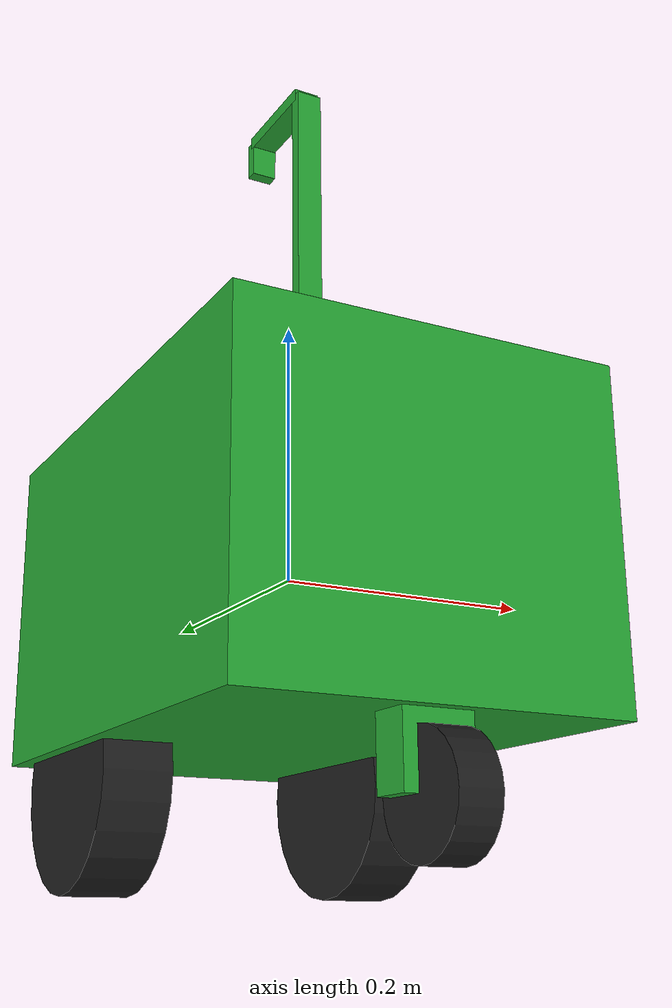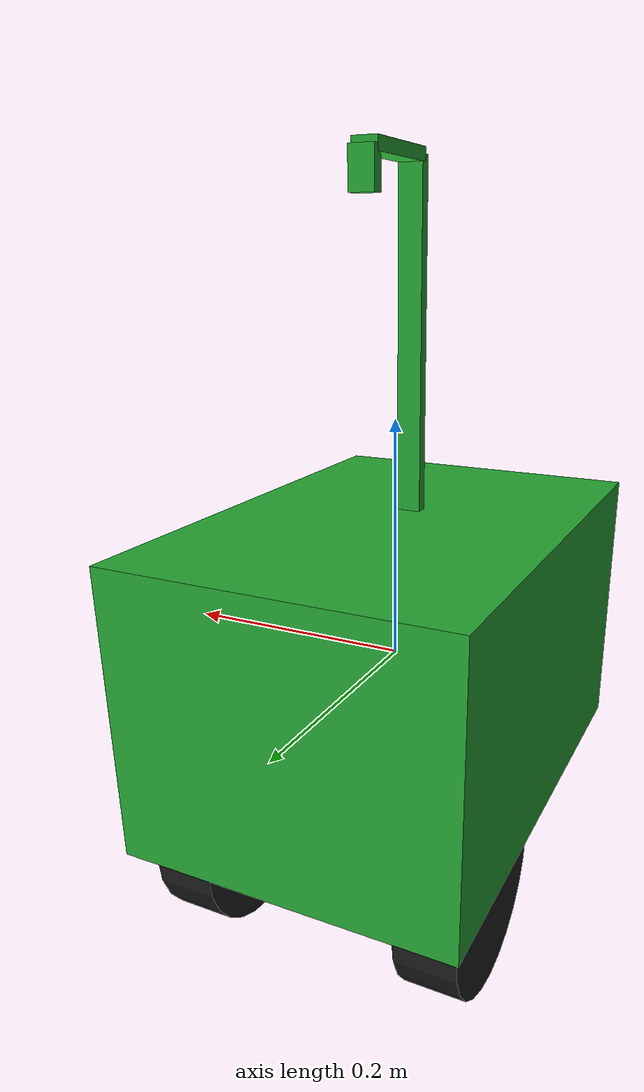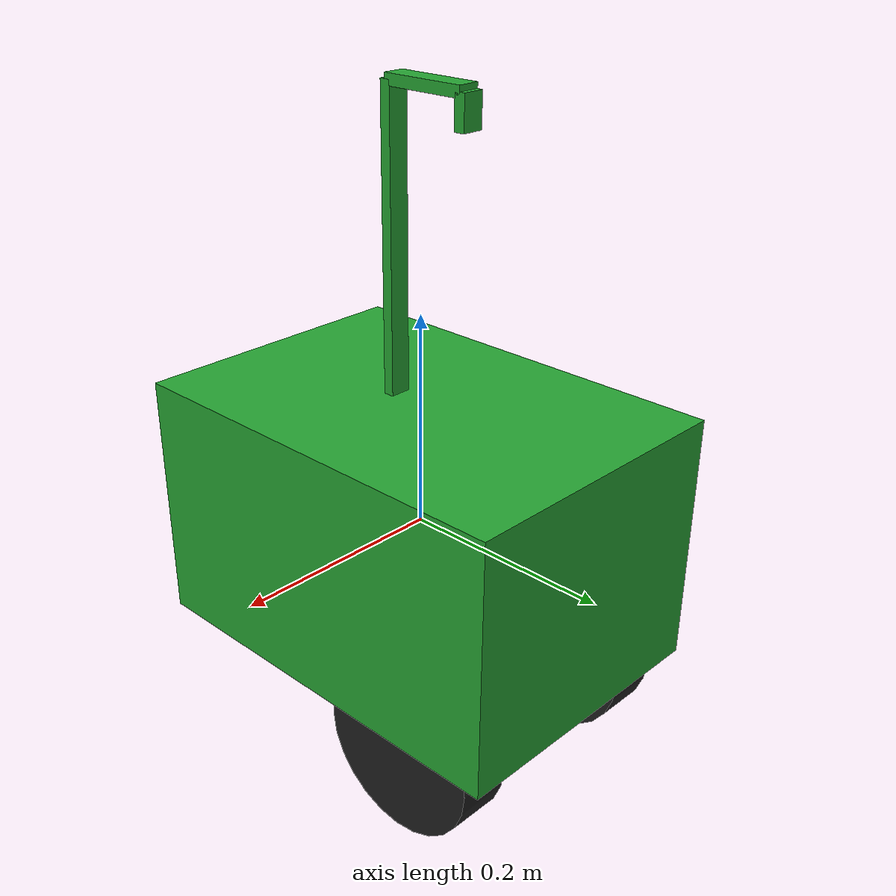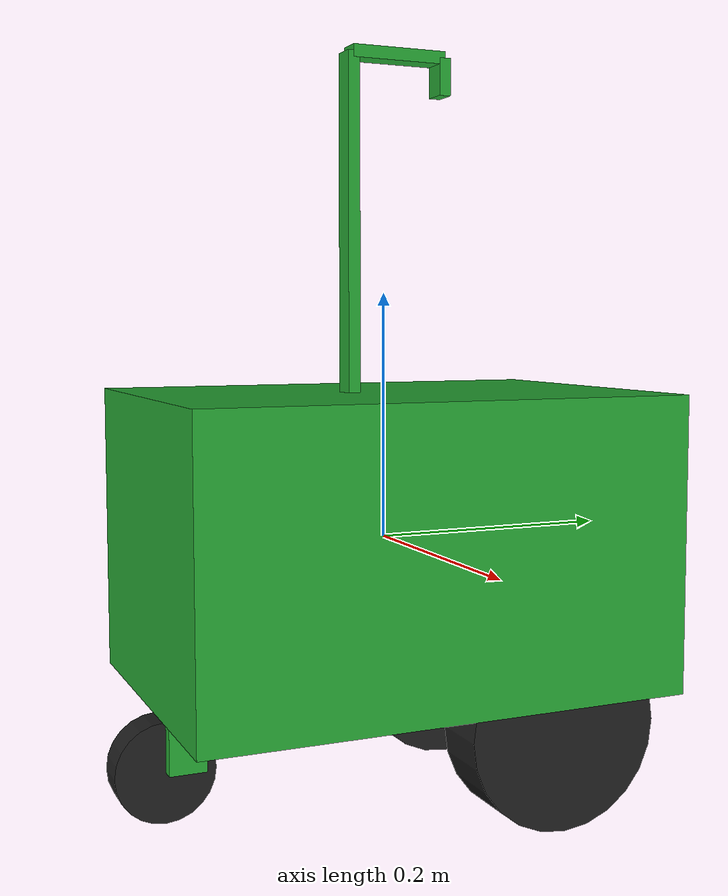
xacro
<?xml version="1.0"?>
<robot xmlns:sensor="http://playerstage.sourceforge.net/gazebo/xmlschema/#sensor"
	xmlns:controller="http://playerstage.sourceforge.net/gazebo/xmlschema/#controller"
	xmlns:interface="http://playerstage.sourceforge.net/gazebo/xmlschema/#interface"
	xmlns:xacro="http://ros.org/wiki/xacro" name="JoeMegaTron">

	<xacro:property name="PI" value="3.14"/>
	<xacro:property name="wheel_separation" value="0.21"/>
	<xacro:property name="wheel_radius" value="0.08"/>
	<xacro:property name="wheel_width" value="0.05"/>
	<xacro:property name="wheel_distance_from_front" value="0.103"/>
	<xacro:property name="wheel_distance_below_body" value="0.02"/>
	<xacro:property name="box_width" value="0.28"/>
	<xacro:property name="box_length" value="0.40"/>
	<xacro:property name="box_height" value="0.24"/>
	<xacro:property name="tower_height" value="0.27"/>
	<xacro:property name="tower_width" value="0.02"/>
	<xacro:property name="tower_length" value="0.01"/>
	<xacro:property name="tower_distance_from_back" value="0.17"/>
	<xacro:property name="boom_forward" value="0.08"/>
	<xacro:property name="boom_down" value="0.03"/>
	<xacro:property name="pivot_distance_from_back" value="0.04"/>
	<xacro:property name="pivot_height" value="0.05"/>
	<xacro:property name="pivot_offset" value="0.03"/>
	<xacro:property name="pivot_wheel_radius" value="0.04"/>
	<xacro:property name="pivot_wheel_width" value="0.03"/>

	<xacro:macro name="wheel" params="name radius width parent *origin">

		<link name="${name}">
			<visual>
				<geometry>
					<cylinder radius="${radius}" length="${width}"/>
				</geometry>
				<origin xyz="0 0 0" rpy="0 ${PI/2} 0"/>
			</visual>
			<inertial>
				<mass value="3.0"/>
				<inertia ixx="1.0" ixy="0.0" ixz="0.0" iyy="1.0" iyz="0.0" izz="1.0"/>
			</inertial>
			<collision>
				<geometry>
					<cylinder radius="${radius}" length="${width}"/>
				</geometry>
				<origin xyz="0 0 0" rpy="0 ${PI/2} 0"/>
			</collision>
		</link>

		<gazebo reference="${name}">
			<material>Gazebo/Black</material>
			<mu1 value="100.0"/>
			<mu2 value="100.0"/>
			<kp value="1000000.0"/>
			<kd value="1.0"/>
		</gazebo>

		<joint name="${name}_axis" type="continuous">
			<limits effort="1000.0" velocity="50.0"/>
			<axis xyz="1 0 0"/>
			<child link="${name}"/>
			<parent link="${parent}"/>
			<xacro:insert_block name="origin"/>
		</joint>

	</xacro:macro>

	<xacro:macro name="BoxBody" params="name width length height *origin">

		<link name="${name}">
			<inertial>
				<mass value="1.0"/>
				<inertia ixx="1.0" ixy="0.0" ixz="0.0" iyy="1.0" iyz="0.0" izz="1.0"/>
				<xacro:insert_block name="origin"/>
			</inertial>
			<visual>
				<geometry>
					<box size="${width} ${length} ${height}"/>
				</geometry>
				<xacro:insert_block name="origin"/>
			</visual>
			<collision>
				<geometry>
					<box size="${width} ${length} ${height}"/>
				</geometry>
				<xacro:insert_block name="origin"/>
			</collision>
		</link>

		<gazebo reference="${name}">
			<material>Gazebo/Green</material>
		</gazebo>

	</xacro:macro>

        <xacro:macro name="BoxBody2" params="name width length height *origin">

		<link name="${name}">
			<inertial>
				<mass value="30.0"/>
				<inertia ixx="30.0" ixy="0.0" ixz="0.0" iyy="30.0" iyz="0.0" izz="30.0"/>
				<xacro:insert_block name="origin"/>
			</inertial>
			<visual>
				<geometry>
					<box size="${width} ${length} ${height}"/>
				</geometry>
				<xacro:insert_block name="origin"/>
			</visual>
			<collision>
				<geometry>
					<box size="${width} ${length} ${height}"/>
				</geometry>
				<xacro:insert_block name="origin"/>
			</collision>
		</link>

		<gazebo reference="${name}">
			<material>Gazebo/Green</material>
		</gazebo>

	</xacro:macro>

	<xacro:BoxBody2 name="Joe_body" width="${box_width}" length="${box_length}" height="${box_height}">

		<origin xyz="0 0 0" rpy="0 0 0"/>

	</xacro:BoxBody2>

	<xacro:wheel name="left_wheel" radius="${wheel_radius}" width="${wheel_width}" parent="Joe_body">

		<origin xyz="${wheel_separation/2} ${box_length/2 - wheel_distance_from_front} ${-wheel_distance_below_body - box_height/2}" rpy="0 0 0"/>

	</xacro:wheel>

	<xacro:wheel name="right_wheel" radius="${wheel_radius}" width="${wheel_width}" parent="Joe_body">

		<origin xyz="${-wheel_separation/2} ${box_length/2 - wheel_distance_from_front} ${-wheel_distance_below_body - box_height/2}" rpy="0 0 0"/>

	</xacro:wheel>

	<xacro:BoxBody name="pivot_box" width="${pivot_wheel_width + 0.02}" length="${pivot_offset}" height="${pivot_height}">

		<origin xyz="0 ${-pivot_offset/2} ${-pivot_height/2}" rpy="0 0 0"/>

	</xacro:BoxBody>

	<joint name="pivot_joint" type="continuous">
		<axis xyz="0 0 1"/>
		<limits effort="1000.0" velocity="3.0"/>
		<parent link="Joe_body"/>
		<child link="pivot_box"/>
		<origin xyz="0 ${-box_length/2 + pivot_distance_from_back} ${-box_height/2}" rpy="0 0 0"/>
	</joint>

	<xacro:wheel name="pivot_wheel" radius="${pivot_wheel_radius}" width="${pivot_wheel_width}" parent="pivot_box">

		<origin xyz="0 ${-pivot_offset} ${-pivot_height}" rpy="0 0 0"/>

	</xacro:wheel>

	<xacro:BoxBody name="tower_base" width="${tower_width}" length="${tower_length}" height="${tower_height}">

		<origin xyz="0 0 ${tower_height/2}" rpy="0 0 0"/>

	</xacro:BoxBody>

	<joint name="tower_base_joint" type="fixed">
		<parent link="Joe_body"/>
		<child link="tower_base"/>
		<origin xyz="0 ${-box_length/2 + tower_distance_from_back} ${box_height/2}" rpy="0 0 0"/>
	</joint>

	<xacro:BoxBody name="tower_boom_1" width="${tower_width}" length="${boom_forward}" height="${tower_length}">

		<origin xyz="0 ${boom_forward/2} 0" rpy="0 0 0"/>

	</xacro:BoxBody>

	<joint name="tower_boom_joint" type="fixed">
		<parent link="tower_base"/>
		<child link="tower_boom_1"/>
		<origin xyz="0 0 ${tower_height}" rpy="0 0 0"/>
	</joint>

	<xacro:BoxBody name="tower_boom_2" width="${tower_width}" length="${tower_length}" height="${boom_down}">

		<origin xyz="0 0 ${-boom_down/2}" rpy="0 0 0"/>

	</xacro:BoxBody>

	<joint name="boom_boom_joint" type="fixed">
		<parent link="tower_boom_1"/>
		<child link="tower_boom_2"/>
		<origin xyz="0 ${boom_forward} 0" rpy="0 0 0"/>
	</joint>
</robot>
